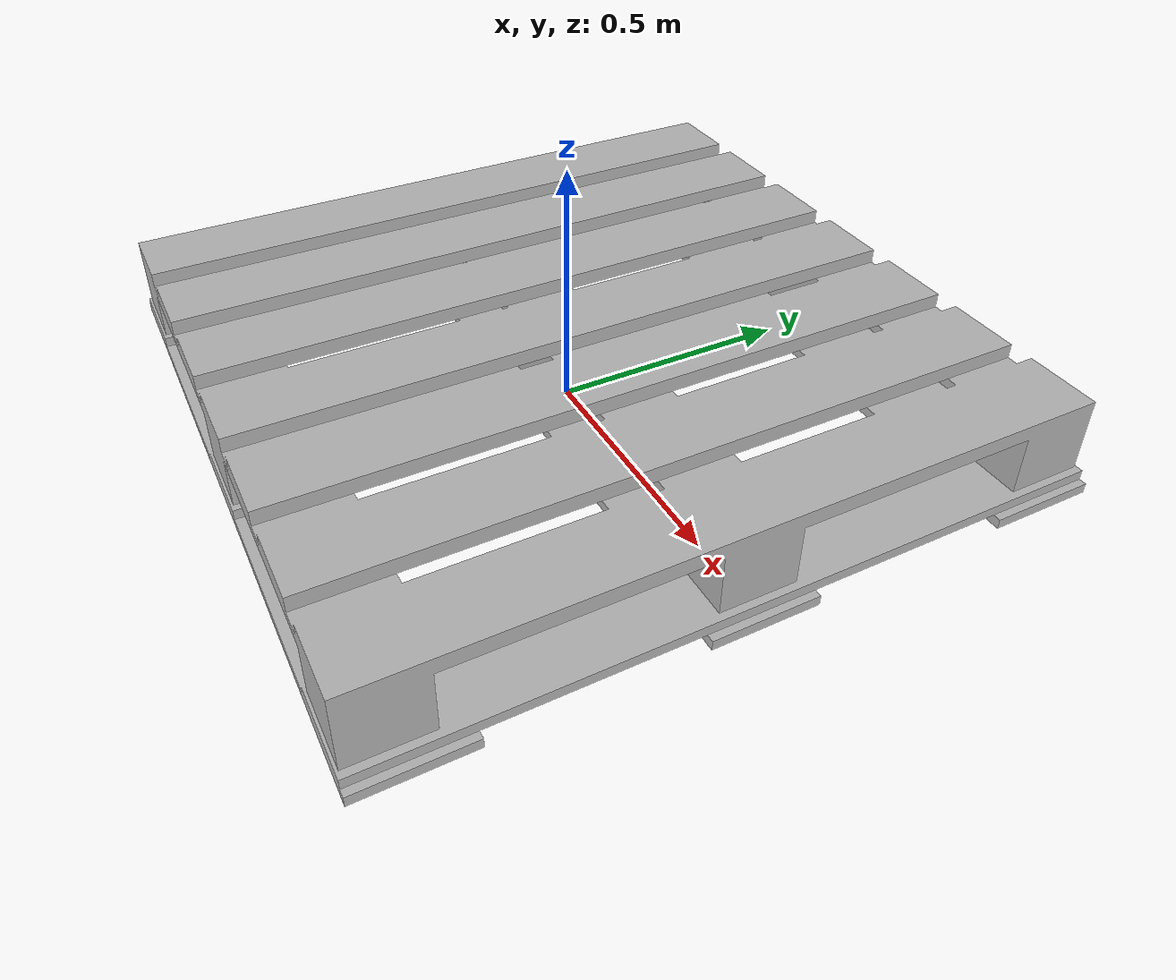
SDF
<?xml version="1.0" ?>
<sdf version="1.6">
  <model name="wooden_pallet">
    <static>false</static>
    <link name="link">
      <inertial>
        <mass>1.0</mass>
        <inertia>
          <ixx>0.01</ixx><ixy>0</ixy><ixz>0</ixz>
          <iyy>0.01</iyy><iyz>0</iyz>
          <izz>0.01</izz>
        </inertia>
      </inertial>
      <collision name="collision">
        <geometry>
          <mesh><uri>model://wooden_pallet/meshes/model.dae</uri></mesh>
        </geometry>
      </collision>
      <visual name="visual">
        <geometry>
          <mesh><uri>model://wooden_pallet/meshes/model.dae</uri></mesh>
        </geometry>
      </visual>
    </link>
  </model>
</sdf>
